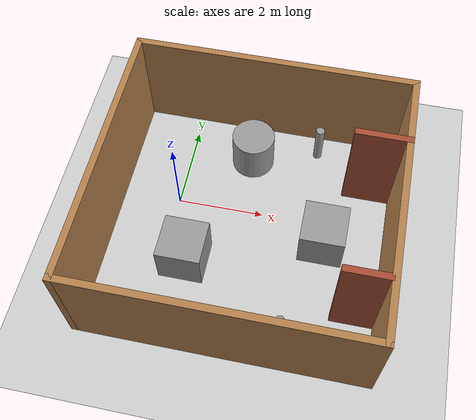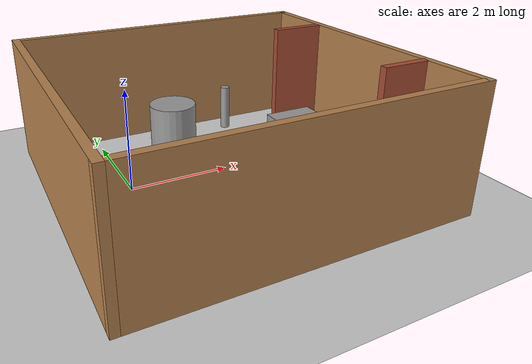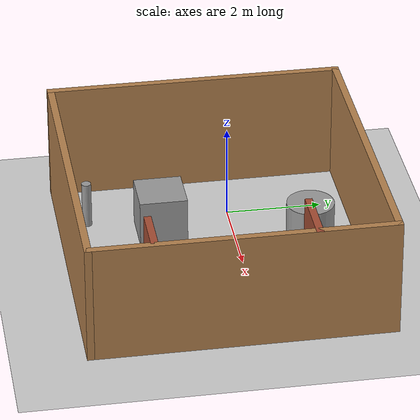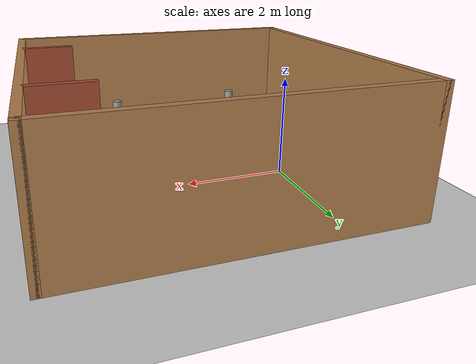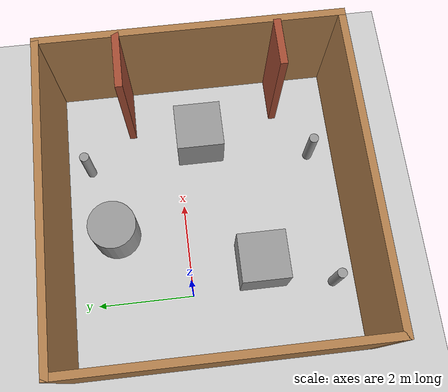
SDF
<sdf version="1.7">
 <world name="default">
  <light name="sun" type="directional">
   <pose>0 0 10 0 -0 0</pose>
   <diffuse>0.8 0.8 0.8 1</diffuse>
   <specular>0.2 0.2 0.2 1</specular>
   <attenuation>
    <range>1000</range>
    <constant>0.9</constant>
    <linear>0.01</linear>
    <quadratic>0.001</quadratic>
   </attenuation>
   <direction>-0.5 0.1 -0.9</direction>
   <spot><inner_angle>0</inner_angle><outer_angle>0</outer_angle><falloff>0</falloff></spot>
  </light>
  <model name="ground_plane">
   <static>1</static>
   <link name="link">
    <collision name="collision">
     <geometry><plane><normal>0 0 1</normal><size>100 100</size></plane></geometry>
     <surface>
      <contact><collide_bitmask>65535</collide_bitmask></contact>
      <friction><ode><mu>100</mu><mu2>50</mu2></ode></friction>
     </surface>
    </collision>
    <visual name="visual">
     <cast_shadows>0</cast_shadows>
     <geometry><plane><normal>0 0 1</normal><size>100 100</size></plane></geometry>
     <material>
      <script><uri>file://media/materials/scripts/gazebo.material</uri><name>Gazebo/Grey</name></script>
     </material>
    </visual>
   </link>
  </model>
  <gravity>0 0 -9.8</gravity>
  <magnetic_field>6e-06 2.3e-05 -4.2e-05</magnetic_field>
  <atmosphere type="adiabatic"/>
  <physics type="ode">
   <max_step_size>0.001</max_step_size>
   <real_time_factor>1</real_time_factor>
   <real_time_update_rate>1000</real_time_update_rate>
  </physics>
  <scene><ambient>0.4 0.4 0.4 1</ambient><background>0.7 0.7 0.7 1</background><shadows>1</shadows></scene>
  <spherical_coordinates>
   <surface_model>EARTH_WGS84</surface_model>
   <latitude_deg>0</latitude_deg>
   <longitude_deg>0</longitude_deg>
   <elevation>0</elevation>
   <heading_deg>0</heading_deg>
  </spherical_coordinates>
  <model name="unit_box">
   <pose>0.511579 -1.49352 0.499995 0 1e-05 0</pose>
   <link name="link">
    <inertial>
     <mass>1</mass>
     <inertia>
      <ixx>0.166667</ixx>
      <ixy>0</ixy>
      <ixz>0</ixz>
      <iyy>0.166667</iyy>
      <iyz>0</iyz>
      <izz>0.166667</izz>
     </inertia>
    </inertial>
    <collision name="collision"><geometry><box><size>1 1 1</size></box></geometry></collision>
    <visual name="visual">
     <geometry><box><size>1 1 1</size></box></geometry>
     <material>
      <script><name>Gazebo/Grey</name><uri>file://media/materials/scripts/gazebo.material</uri></script>
     </material>
    </visual>
   </link>
  </model>
  <model name="unit_cylinder">
   <pose>1.49112 1.50288 0.499998 3e-06 -4e-06 0</pose>
   <link name="link">
    <inertial>
     <mass>1</mass>
     <inertia><ixx>0.145833</ixx><ixy>0</ixy><ixz>0</ixz><iyy>0.145833</iyy><iyz>0</iyz><izz>0.125</izz></inertia>
    </inertial>
    <collision name="collision">
     <geometry><cylinder><radius>0.5</radius><length>1</length></cylinder></geometry>
    </collision>
    <visual name="visual">
     <geometry><cylinder><radius>0.5</radius><length>1</length></cylinder></geometry>
     <material>
      <script><name>Gazebo/Grey</name><uri>file://media/materials/scripts/gazebo.material</uri></script>
     </material>
    </visual>
   </link>
  </model>
  <model name="unit_box_0">
   <pose>3.49228 -0.48993 0.499995 0 1e-05 0</pose>
   <link name="link">
    <inertial>
     <mass>1</mass>
     <inertia>
      <ixx>0.166667</ixx>
      <ixy>0</ixy>
      <ixz>0</ixz>
      <iyy>0.166667</iyy>
      <iyz>0</iyz>
      <izz>0.166667</izz>
     </inertia>
    </inertial>
    <collision name="collision"><geometry><box><size>1 1 1</size></box></geometry></collision>
    <visual name="visual">
     <geometry><box><size>1 1 1</size></box></geometry>
     <material>
      <script><name>Gazebo/Grey</name><uri>file://media/materials/scripts/gazebo.material</uri></script>
     </material>
    </visual>
   </link>
  </model>
  <model name="factory">
   <pose>1.765 -0.47943 0 0 -0 0</pose>
   <link name="Wall_0">
    <collision name="Wall_0_Collision">
     <geometry><box><size>6.25 0.15 2.5</size></box></geometry>
     <pose>0 0 1.25 0 -0 0</pose>
    </collision>
    <visual name="Wall_0_Visual">
     <pose>0 0 1.25 0 -0 0</pose>
     <geometry><box><size>6.25 0.15 2.5</size></box></geometry>
     <material>
      <script><uri>file://media/materials/scripts/gazebo.material</uri><name>Gazebo/Wood</name></script>
      <ambient>1 1 1 1</ambient>
     </material>
     <meta><layer>0</layer></meta>
    </visual>
    <pose>-3.175 0 0 0 -0 1.5708</pose>
   </link>
   <link name="Wall_1">
    <collision name="Wall_1_Collision">
     <geometry><box><size>6.5 0.15 2.5</size></box></geometry>
     <pose>0 0 1.25 0 -0 0</pose>
    </collision>
    <visual name="Wall_1_Visual">
     <pose>0 0 1.25 0 -0 0</pose>
     <geometry><box><size>6.5 0.15 2.5</size></box></geometry>
     <material>
      <script><uri>file://media/materials/scripts/gazebo.material</uri><name>Gazebo/Wood</name></script>
      <ambient>1 1 1 1</ambient>
     </material>
     <meta><layer>0</layer></meta>
    </visual>
    <pose>0 3.05 0 0 -0 0</pose>
   </link>
   <link name="Wall_2">
    <collision name="Wall_2_Collision">
     <geometry><box><size>6.25 0.15 2.5</size></box></geometry>
     <pose>0 0 1.25 0 -0 0</pose>
    </collision>
    <visual name="Wall_2_Visual">
     <pose>0 0 1.25 0 -0 0</pose>
     <geometry><box><size>6.25 0.15 2.5</size></box></geometry>
     <material>
      <script><uri>file://media/materials/scripts/gazebo.material</uri><name>Gazebo/Wood</name></script>
      <ambient>1 1 1 1</ambient>
     </material>
     <meta><layer>0</layer></meta>
    </visual>
    <pose>3.175 0 0 0 -0 -1.5708</pose>
   </link>
   <link name="Wall_3">
    <collision name="Wall_3_Collision">
     <geometry><box><size>6.5 0.15 2.5</size></box></geometry>
     <pose>0 0 1.25 0 -0 0</pose>
    </collision>
    <visual name="Wall_3_Visual">
     <pose>0 0 1.25 0 -0 0</pose>
     <geometry><box><size>6.5 0.15 2.5</size></box></geometry>
     <material>
      <script><uri>file://media/materials/scripts/gazebo.material</uri><name>Gazebo/Wood</name></script>
      <ambient>1 1 1 1</ambient>
     </material>
     <meta><layer>0</layer></meta>
    </visual>
    <pose>0 -3.05 0 0 -0 3.14159</pose>
   </link>
   <link name="Wall_5">
    <collision name="Wall_5_Collision">
     <geometry><box><size>1.25 0.15 2.5</size></box></geometry>
     <pose>0 0 1.25 0 -0 0</pose>
    </collision>
    <visual name="Wall_5_Visual">
     <pose>0 0 1.25 0 -0 0</pose>
     <geometry><box><size>1.25 0.15 2.5</size></box></geometry>
     <material>
      <script><uri>file://media/materials/scripts/gazebo.material</uri><name>Gazebo/Bricks</name></script>
      <ambient>1 1 1 1</ambient>
     </material>
     <meta><layer>0</layer></meta>
    </visual>
    <pose>2.62424 1.47314 0 0 -0 3.14159</pose>
   </link>
   <link name="Wall_8">
    <collision name="Wall_8_Collision">
     <geometry><box><size>1 0.15 2.5</size></box></geometry>
     <pose>0 0 1.25 0 -0 0</pose>
    </collision>
    <visual name="Wall_8_Visual">
     <pose>0 0 1.25 0 -0 0</pose>
     <geometry><box><size>1 0.15 2.5</size></box></geometry>
     <material>
      <script><uri>file://media/materials/scripts/gazebo.material</uri><name>Gazebo/Bricks</name></script>
      <ambient>1 1 1 1</ambient>
     </material>
     <meta><layer>0</layer></meta>
    </visual>
    <pose>2.6483 -1.75075 0 0 -0 3.14159</pose>
   </link>
   <static>1</static>
  </model>
  <model name="unit_cylinder_clone_clone_0">
   <link name="link_0">
    <inertial>
     <mass>1</mass>
     <inertia><ixx>0.145833</ixx><ixy>0</ixy><ixz>0</ixz><iyy>0.145833</iyy><iyz>0</iyz><izz>0.125</izz></inertia>
    </inertial>
    <pose>-0.146937 0.117875 0 0 -0 0</pose>
    <visual name="visual">
     <geometry><cylinder><radius>0.1</radius><length>1</length></cylinder></geometry>
     <material>
      <lighting>1</lighting>
      <script><uri>file://media/materials/scripts/gazebo.material</uri><name>Gazebo/Grey</name></script>
      <shader type="pixel"><normal_map>__default__</normal_map></shader>
      <ambient>0.3 0.3 0.3 1</ambient>
      <diffuse>0.7 0.7 0.7 1</diffuse>
      <specular>0.01 0.01 0.01 1</specular>
      <emissive>0 0 0 1</emissive>
     </material>
    </visual>
    <collision name="collision">
     <geometry><cylinder><radius>0.1</radius><length>1</length></cylinder></geometry>
     <surface>
      <friction>
       <ode><mu>1</mu><mu2>1</mu2><fdir1>0 0 0</fdir1><slip1>0</slip1><slip2>0</slip2></ode>
       <torsional>
        <coefficient>1</coefficient>
        <patch_radius>0</patch_radius>
        <surface_radius>0</surface_radius>
        <use_patch_radius>1</use_patch_radius>
        <ode><slip>0</slip></ode>
       </torsional>
      </friction>
      <bounce><restitution_coefficient>0</restitution_coefficient><threshold>1e+06</threshold></bounce>
      <contact>
       <collide_without_contact>0</collide_without_contact>
       <collide_without_contact_bitmask>1</collide_without_contact_bitmask>
       <collide_bitmask>1</collide_bitmask>
       <ode>
        <soft_cfm>0</soft_cfm>
        <soft_erp>0.2</soft_erp>
        <kp>1e+13</kp>
        <kd>1</kd>
        <max_vel>0.01</max_vel>
        <min_depth>0</min_depth>
       </ode>
       <bullet>
        <split_impulse>1</split_impulse>
        <split_impulse_penetration_threshold>-0.01</split_impulse_penetration_threshold>
        <soft_cfm>0</soft_cfm>
        <soft_erp>0.2</soft_erp>
        <kp>1e+13</kp>
        <kd>1</kd>
       </bullet>
      </contact>
     </surface>
    </collision>
   </link>
   <static>0</static>
   <pose>3.05785 -3.01849 0.5 0 -0 0</pose>
  </model>
  <model name="unit_cylinder_clone_clone_1">
   <link name="link_0">
    <inertial>
     <mass>1</mass>
     <inertia><ixx>0.145833</ixx><ixy>0</ixy><ixz>0</ixz><iyy>0.145833</iyy><iyz>0</iyz><izz>0.125</izz></inertia>
    </inertial>
    <pose>-0.146937 0.117875 -0 0 -0 0</pose>
    <visual name="visual">
     <geometry><cylinder><radius>0.1</radius><length>1</length></cylinder></geometry>
     <material>
      <lighting>1</lighting>
      <script><uri>file://media/materials/scripts/gazebo.material</uri><name>Gazebo/Grey</name></script>
      <shader type="pixel"><normal_map>__default__</normal_map></shader>
      <ambient>0.3 0.3 0.3 1</ambient>
      <diffuse>0.7 0.7 0.7 1</diffuse>
      <specular>0.01 0.01 0.01 1</specular>
      <emissive>0 0 0 1</emissive>
     </material>
    </visual>
    <collision name="collision">
     <geometry><cylinder><radius>0.1</radius><length>1</length></cylinder></geometry>
     <surface>
      <friction>
       <ode><mu>1</mu><mu2>1</mu2><fdir1>0 0 0</fdir1><slip1>0</slip1><slip2>0</slip2></ode>
       <torsional>
        <coefficient>1</coefficient>
        <patch_radius>0</patch_radius>
        <surface_radius>0</surface_radius>
        <use_patch_radius>1</use_patch_radius>
        <ode><slip>0</slip></ode>
       </torsional>
      </friction>
      <bounce><restitution_coefficient>0</restitution_coefficient><threshold>1e+06</threshold></bounce>
      <contact>
       <collide_without_contact>0</collide_without_contact>
       <collide_without_contact_bitmask>1</collide_without_contact_bitmask>
       <collide_bitmask>1</collide_bitmask>
       <ode>
        <soft_cfm>0</soft_cfm>
        <soft_erp>0.2</soft_erp>
        <kp>1e+13</kp>
        <kd>1</kd>
        <max_vel>0.01</max_vel>
        <min_depth>0</min_depth>
       </ode>
       <bullet>
        <split_impulse>1</split_impulse>
        <split_impulse_penetration_threshold>-0.01</split_impulse_penetration_threshold>
        <soft_cfm>0</soft_cfm>
        <soft_erp>0.2</soft_erp>
        <kp>1e+13</kp>
        <kd>1</kd>
       </bullet>
      </contact>
     </surface>
    </collision>
   </link>
   <static>0</static>
   <pose>0.139809 -3.10343 0.5 0 -0 0</pose>
  </model>
  <model name="unit_cylinder_clone_clone">
   <link name="link_0">
    <inertial>
     <mass>1</mass>
     <inertia><ixx>0.145833</ixx><ixy>0</ixy><ixz>0</ixz><iyy>0.145833</iyy><iyz>0</iyz><izz>0.125</izz></inertia>
    </inertial>
    <pose>-0.146937 0.117875 0 0 -0 0</pose>
    <visual name="visual">
     <geometry><cylinder><radius>0.1</radius><length>1</length></cylinder></geometry>
     <material>
      <lighting>1</lighting>
      <script><uri>file://media/materials/scripts/gazebo.material</uri><name>Gazebo/Grey</name></script>
      <shader type="pixel"><normal_map>__default__</normal_map></shader>
      <ambient>0.3 0.3 0.3 1</ambient>
      <diffuse>0.7 0.7 0.7 1</diffuse>
      <specular>0.01 0.01 0.01 1</specular>
      <emissive>0 0 0 1</emissive>
     </material>
    </visual>
    <collision name="collision">
     <geometry><cylinder><radius>0.1</radius><length>1</length></cylinder></geometry>
     <surface>
      <friction>
       <ode><mu>1</mu><mu2>1</mu2><fdir1>0 0 0</fdir1><slip1>0</slip1><slip2>0</slip2></ode>
       <torsional>
        <coefficient>1</coefficient>
        <patch_radius>0</patch_radius>
        <surface_radius>0</surface_radius>
        <use_patch_radius>1</use_patch_radius>
        <ode><slip>0</slip></ode>
       </torsional>
      </friction>
      <bounce><restitution_coefficient>0</restitution_coefficient><threshold>1e+06</threshold></bounce>
      <contact>
       <collide_without_contact>0</collide_without_contact>
       <collide_without_contact_bitmask>1</collide_without_contact_bitmask>
       <collide_bitmask>1</collide_bitmask>
       <ode>
        <soft_cfm>0</soft_cfm>
        <soft_erp>0.2</soft_erp>
        <kp>1e+13</kp>
        <kd>1</kd>
        <max_vel>0.01</max_vel>
        <min_depth>0</min_depth>
       </ode>
       <bullet>
        <split_impulse>1</split_impulse>
        <split_impulse_penetration_threshold>-0.01</split_impulse_penetration_threshold>
        <soft_cfm>0</soft_cfm>
        <soft_erp>0.2</soft_erp>
        <kp>1e+13</kp>
        <kd>1</kd>
       </bullet>
      </contact>
     </surface>
    </collision>
   </link>
   <static>0</static>
   <pose>3.16683 1.86427 0.5 0 -0 0</pose>
  </model>
 </world>
</sdf>
